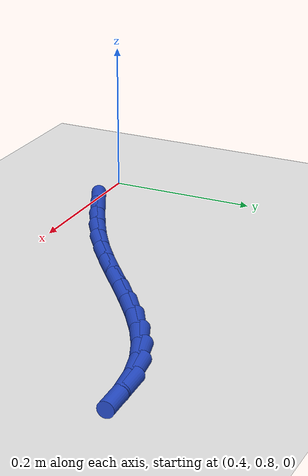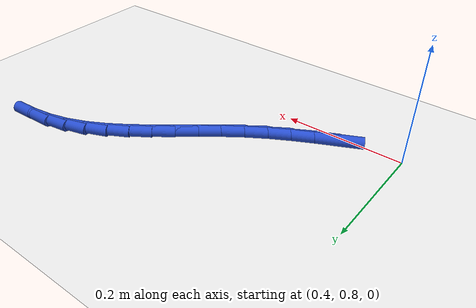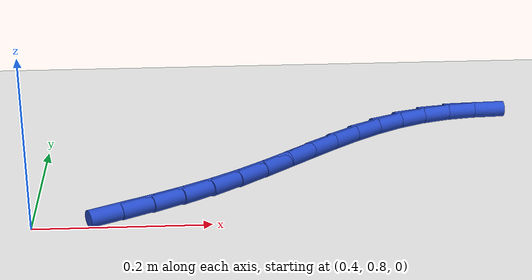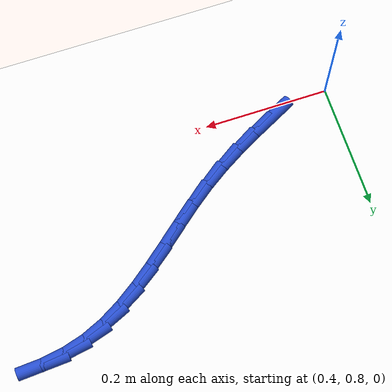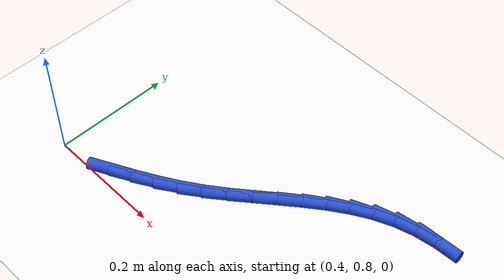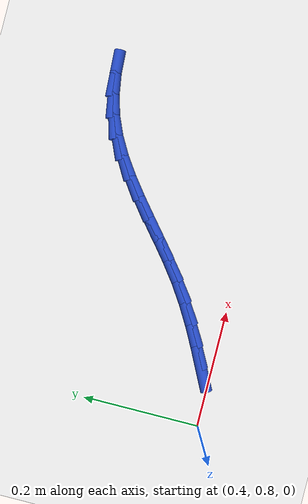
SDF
<sdf version="1.6">
 <world name="default">
  <model name="ground_plane">
   <static>1</static>
   <link name="link">
    <collision name="collision">
     <geometry><plane><normal>0 0 1</normal><size>100 100</size></plane></geometry>
     <surface><friction><ode><mu>100</mu><mu2>50</mu2></ode></friction></surface>
    </collision>
    <visual name="visual">
     <cast_shadows>0</cast_shadows>
     <geometry><plane><normal>0 0 1</normal><size>100 100</size></plane></geometry>
     <material>
      <script><uri>file://media/materials/scripts/gazebo.material</uri><name>Gazebo/WhiteGlow</name></script>
     </material>
    </visual>
   </link>
  </model>
  <model name="line">
   <link name="link_27">
    <pose>0.49903205848429427 0.8197301941333361 0.01 0 1.57 0.467996018739926</pose>
    <collision name="collision">
     <geometry><cylinder><radius>0.01</radius><length>0.08</length></cylinder></geometry>
    </collision>
    <visual name="visual">
     <material>
      <script><name>Gazebo/Blue</name><uri>file://media/materials/scripts/gazebo.material</uri></script>
     </material>
     <geometry><cylinder><radius>0.01</radius><length>0.08</length></cylinder></geometry>
    </visual>
   </link>
   <link name="link_28">
    <pose>0.5327379980522156 0.836766773323888 0.01 0 1.57 0.49336889712530657</pose>
    <collision name="collision">
     <geometry><cylinder><radius>0.01</radius><length>0.08</length></cylinder></geometry>
    </collision>
    <visual name="visual">
     <material>
      <script><name>Gazebo/Blue</name><uri>file://media/materials/scripts/gazebo.material</uri></script>
     </material>
     <geometry><cylinder><radius>0.01</radius><length>0.08</length></cylinder></geometry>
    </visual>
   </link>
   <link name="link_29">
    <pose>0.5661071494732987 0.85471014391803 0.01 0 1.57 0.533207896753018</pose>
    <collision name="collision">
     <geometry><cylinder><radius>0.01</radius><length>0.08</length></cylinder></geometry>
    </collision>
    <visual name="visual">
     <material>
      <script><name>Gazebo/Blue</name><uri>file://media/materials/scripts/gazebo.material</uri></script>
     </material>
     <geometry><cylinder><radius>0.01</radius><length>0.08</length></cylinder></geometry>
    </visual>
   </link>
   <link name="link_30">
    <pose>0.5988609956733096 0.8740425875891977 0.01 0 1.57 0.5871613968589999</pose>
    <collision name="collision">
     <geometry><cylinder><radius>0.01</radius><length>0.08</length></cylinder></geometry>
    </collision>
    <visual name="visual">
     <material>
      <script><name>Gazebo/Blue</name><uri>file://media/materials/scripts/gazebo.material</uri></script>
     </material>
     <geometry><cylinder><radius>0.01</radius><length>0.08</length></cylinder></geometry>
    </visual>
   </link>
   <link name="link_31">
    <pose>0.6307218846848133 0.8952444885408729 0.01 0 1.57 0.6440316544857898</pose>
    <collision name="collision">
     <geometry><cylinder><radius>0.01</radius><length>0.08</length></cylinder></geometry>
    </collision>
    <visual name="visual">
     <material>
      <script><name>Gazebo/Blue</name><uri>file://media/materials/scripts/gazebo.material</uri></script>
     </material>
     <geometry><cylinder><radius>0.01</radius><length>0.08</length></cylinder></geometry>
    </visual>
   </link>
   <link name="link_32">
    <pose>0.6615849064864272 0.918417349834066 0.01 0 1.57 0.6807557867257129</pose>
    <collision name="collision">
     <geometry><cylinder><radius>0.01</radius><length>0.08</length></cylinder></geometry>
    </collision>
    <visual name="visual">
     <material>
      <script><name>Gazebo/Blue</name><uri>file://media/materials/scripts/gazebo.material</uri></script>
     </material>
     <geometry><cylinder><radius>0.01</radius><length>0.08</length></cylinder></geometry>
    </visual>
   </link>
   <link name="link_33">
    <pose>0.6917254528583263 0.9428285448678801 0.01 0 1.57 0.6951146268430668</pose>
    <collision name="collision">
     <geometry><cylinder><radius>0.01</radius><length>0.08</length></cylinder></geometry>
    </collision>
    <visual name="visual">
     <material>
      <script><name>Gazebo/Blue</name><uri>file://media/materials/scripts/gazebo.material</uri></script>
     </material>
     <geometry><cylinder><radius>0.01</radius><length>0.08</length></cylinder></geometry>
    </visual>
   </link>
   <link name="link_34">
    <pose>0.7214695904114714 0.9676343001068053 0.01 0 1.57 0.6873016695418545</pose>
    <collision name="collision">
     <geometry><cylinder><radius>0.01</radius><length>0.08</length></cylinder></geometry>
    </collision>
    <visual name="visual">
     <material>
      <script><name>Gazebo/Blue</name><uri>file://media/materials/scripts/gazebo.material</uri></script>
     </material>
     <geometry><cylinder><radius>0.01</radius><length>0.08</length></cylinder></geometry>
    </visual>
   </link>
   <link name="link_35">
    <pose>0.7511433857568239 0.991990842015331 0.01 0 1.57 0.6565524947184433</pose>
    <collision name="collision">
     <geometry><cylinder><radius>0.01</radius><length>0.08</length></cylinder></geometry>
    </collision>
    <visual name="visual">
     <material>
      <script><name>Gazebo/Blue</name><uri>file://media/materials/scripts/gazebo.material</uri></script>
     </material>
     <geometry><cylinder><radius>0.01</radius><length>0.08</length></cylinder></geometry>
    </visual>
   </link>
   <link name="link_36">
    <pose>0.7810729055053458 1.0150543970579475 0.01 0 1.57 0.6011797031705326</pose>
    <collision name="collision">
     <geometry><cylinder><radius>0.01</radius><length>0.08</length></cylinder></geometry>
    </collision>
    <visual name="visual">
     <material>
      <script><name>Gazebo/Blue</name><uri>file://media/materials/scripts/gazebo.material</uri></script>
     </material>
     <geometry><cylinder><radius>0.01</radius><length>0.08</length></cylinder></geometry>
    </visual>
   </link>
   <link name="link_37">
    <pose>0.8115842162679975 1.0359811916991446 0.01 0 1.57 0.5189649516195042</pose>
    <collision name="collision">
     <geometry><cylinder><radius>0.01</radius><length>0.08</length></cylinder></geometry>
    </collision>
    <visual name="visual">
     <material>
      <script><name>Gazebo/Blue</name><uri>file://media/materials/scripts/gazebo.material</uri></script>
     </material>
     <geometry><cylinder><radius>0.01</radius><length>0.08</length></cylinder></geometry>
    </visual>
   </link>
   <link name="link_38">
    <pose>0.8430033846557405 1.0539274524034117 0.01 0 1.57 0.40819293050368466</pose>
    <collision name="collision">
     <geometry><cylinder><radius>0.01</radius><length>0.08</length></cylinder></geometry>
    </collision>
    <visual name="visual">
     <material>
      <script><name>Gazebo/Blue</name><uri>file://media/materials/scripts/gazebo.material</uri></script>
     </material>
     <geometry><cylinder><radius>0.01</radius><length>0.08</length></cylinder></geometry>
    </visual>
   </link>
   <link name="link_39">
    <pose>0.875656476687202 1.0680494071366773 0.01 0 1.57 0.2768907122084179</pose>
    <collision name="collision">
     <geometry><cylinder><radius>0.01</radius><length>0.08</length></cylinder></geometry>
    </collision>
    <visual name="visual">
     <material>
      <script><name>Gazebo/Blue</name><uri>file://media/materials/scripts/gazebo.material</uri></script>
     </material>
     <geometry><cylinder><radius>0.01</radius><length>0.08</length></cylinder></geometry>
    </visual>
   </link>
   <link name="link_40">
    <pose>0.9097740729027157 1.0777453187078059 0.01 0 1.57 0.1562112137187419</pose>
    <collision name="collision">
     <geometry><cylinder><radius>0.01</radius><length>0.08</length></cylinder></geometry>
    </collision>
    <visual name="visual">
     <material>
      <script><name>Gazebo/Blue</name><uri>file://media/materials/scripts/gazebo.material</uri></script>
     </material>
     <geometry><cylinder><radius>0.01</radius><length>0.08</length></cylinder></geometry>
    </visual>
   </link>
   <link name="link_41">
    <pose>0.9452256601136987 1.0833287437014865 0.01 0 1.57 0.05465799892209218</pose>
    <collision name="collision">
     <geometry><cylinder><radius>0.01</radius><length>0.08</length></cylinder></geometry>
    </collision>
    <visual name="visual">
     <material>
      <script><name>Gazebo/Blue</name><uri>file://media/materials/scripts/gazebo.material</uri></script>
     </material>
     <geometry><cylinder><radius>0.01</radius><length>0.08</length></cylinder></geometry>
    </visual>
   </link>
  </model>
 </world>
</sdf>
